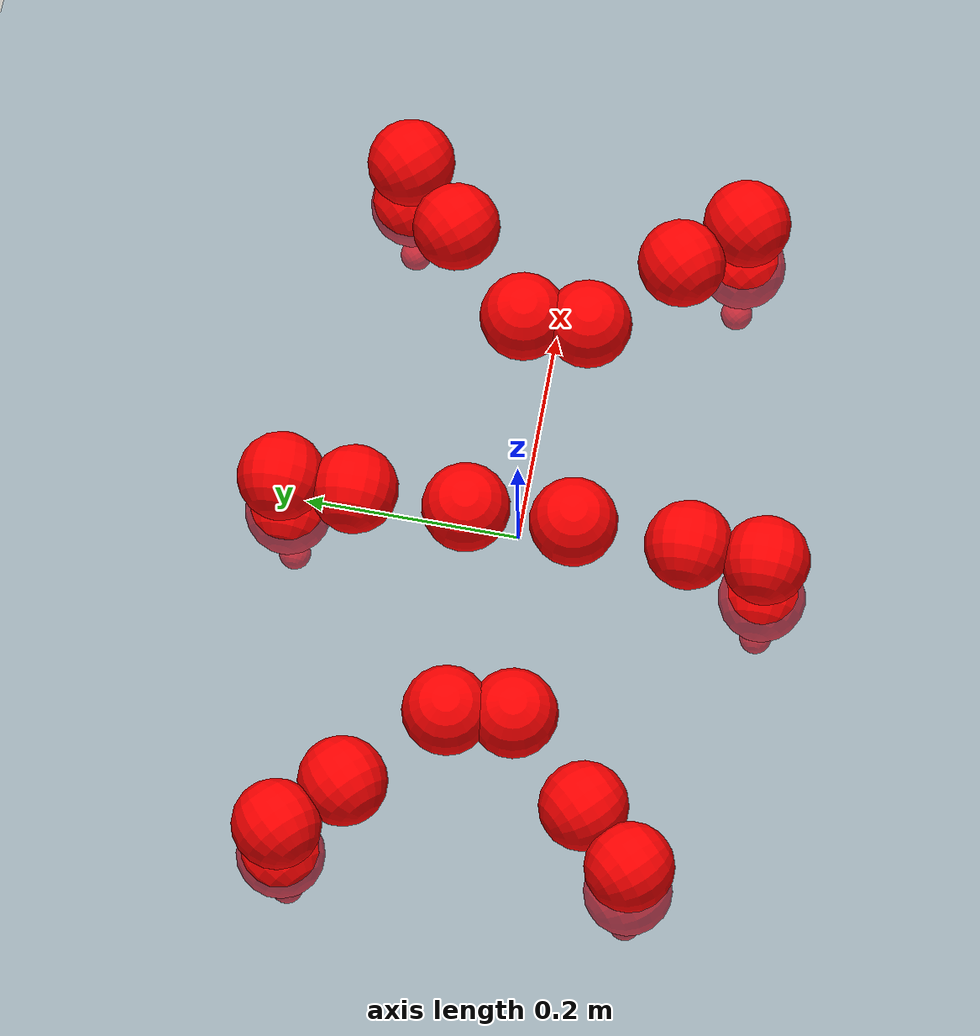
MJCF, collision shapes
<mujoco model="Golem">
  <compiler angle="radian" assetdir="assets" balanceinertia="true" inertiafromgeom="false"/>

  <option timestep="0.005" density="1.2" viscosity="2e-05"/>

  <size nkey="1"/>

  <visual>
    <quality shadowsize="8192"/>
    <map shadowclip="0.5"/>
  </visual>

  <default>
    <default class="/">
      <joint armature="0.01" damping="0.01" frictionloss="0.01"/>
      <geom contype="0" conaffinity="0" group="1" solref="-1000 -80"/>
      <site size="0.01 0.005 0.005" group="5"/>
      <general forcelimited="true" biastype="affine" gainprm="25" biasprm="0 -25 -0.5"/>
      <default class="visual">
        <geom type="mesh" group="2"/>
      </default>
      <default class="collision">
        <geom group="3"/>
      </default>
      <default class="foot">
        <geom size="0.01 0 0" condim="6" group="4" priority="1" solimp="0.015 1 0.01"/>
      </default>
      <default class="reward_collision_sphere">
        <geom group="5" rgba="1 0 0 1"/>
      </default>
    </default>
  </default>

  <asset>
    <texture type="skybox" colorspace="auto" name="//unnamed_texture_0" builtin="gradient" rgb1="0.95 0.95 0.95" rgb2="0.95 0.95 0.95" width="100" height="600"/>
    <texture type="2d" colorspace="auto" name="texplane" builtin="checker" rgb1="0.345 0.575 0.748" rgb2="0.345 0.575 0.748" markrgb="1 1 1" width="512" height="512"/>
    <material name="MatPlane" class="/" texture="texplane" texuniform="true" texrepeat="2 2" specular="0.9"/>
    <mesh name="body" class="/" file="body.stl" scale="0.001 0.001 0.001"/>
    <mesh name="coxa" class="/" file="coxa.stl" scale="0.001 0.001 0.001"/>
    <mesh name="femur" class="/" file="femur.stl" scale="0.001 0.001 0.001"/>
    <mesh name="tibia" class="/" file="tibia.stl" scale="0.001 0.001 0.001"/>
    <mesh name="tarsus" class="/" file="tarsus.stl" scale="0.001 0.001 0.001"/>
  </asset>

  <worldbody>
    <geom name="floor" class="/" size="100 100 0.125" type="plane" group="0" material="MatPlane"/>
    <light name="toplight_shadow" class="/" pos="0 0 5" dir="0.0990148 0.0990148 -0.990148" type="directional" ambient="0.04 0.04 0.04" diffuse="0.55 0.55 0.55" specular="0.12 0.12 0.12"/>
    <light name="toplight_fill" class="/" pos="0 0 5" dir="0.0990148 0.0990148 -0.990148" type="directional" castshadow="false" ambient="0.04 0.04 0.04" diffuse="0.3 0.3 0.3" specular="0.08 0.08 0.08"/>
    <body name="trunk" pos="-0.00227692 0.000449674 0.00267397" quat="1 0.000303924 -1.79823e-05 0.000320548">
      <inertial pos="0.00233312 0.00012395 -0.00292702" quat="0.999996 -0.00272422 -0.00016899 -0.000294692" mass="3.99898" diaginertia="0.0277618 0.00118277 0.0262263"/>
      <joint name="//unnamed_joint_0" type="free"/>
      <geom name="//unnamed_geom_1" class="/" pos="0 0 0.0770454" quat="1 0 0 0" type="mesh" rgba="0.9 0.9 0.9 1" mesh="body"/>
      <site name="imu" class="/" pos="0.160827 -0.00471093 0.13332" size="0.010233"/>
      <camera name="track" class="/" pos="0 -1.30171 0" quat="0.707107 0.707107 0 0" mode="trackcom"/>
      <camera name="ego_camera" class="/" pos="0.157975 0 0.120383" quat="-0.5 -0.5 0.5 0.5"/>
      <body name="coxa_RR" pos="-0.211995 -0.0561144 0.0778597" quat="0.382609 0.00057231 -0.000163841 -0.92391">
        <inertial pos="0.00105367 0.00243532 0.00135996" quat="0.999937 -0.000721359 -0.00879154 -0.00695671" mass="0.2233" diaginertia="0.0274979 0.00120653 0.0273833"/>
        <joint name="coxa_joint_RR" class="/" pos="0 0 0" axis="-0.00365619 0.0204331 -0.999785" stiffness="0.000405324" range="-3.14434 3.11968" armature="0.00932745" damping="0.00873527" frictionloss="0.0109391"/>
        <geom name="//unnamed_geom_2" class="/" type="mesh" rgba="0.2 0.2 0.2 1" mesh="coxa"/>
        <geom name="//unnamed_geom_3" class="reward_collision_sphere" size="0.0409318" pos="-0.0364558 0 0"/>
        <body name="femur_RR" pos="0.0685398 0.00385556 -0.00668313" quat="0.499671 -0.50108 0.49927 0.499978">
          <inertial pos="-0.00271387 0.00150562 -0.00191645" quat="0.999991 -0.000517094 -0.00105282 -0.00413439" mass="0.214573" diaginertia="0.0262923 0.00114433 0.0249431"/>
          <joint name="femur_joint_RR" class="/" pos="0 0 0" axis="0.00225437 0.000378483 -0.999997" range="-3.08896 3.17264" armature="0.00978375" damping="0.0276461" frictionloss="0.0105757"/>
          <geom name="//unnamed_geom_4" class="/" type="mesh" rgba="0.9 0.9 0.9 1" mesh="femur"/>
          <geom name="//unnamed_geom_5" class="reward_collision_sphere" size="0.0409318"/>
          <body name="tibia_RR" pos="-0.00265755 -0.0696257 0.00100025" quat="-0.000290672 1 -0.000390749 -0.000752891">
            <inertial pos="0.000973625 -0.00109196 -8.28496e-06" quat="0.999999 0.000840645 0.00100208 0.000250902" mass="0.214528" diaginertia="0.0258004 0.00112826 0.0241704"/>
            <joint name="tibia_joint_RR" class="/" pos="0 0 0" axis="0.00485885 0.00838453 0.999953" stiffness="0.00694464" range="-3.09401 3.08719" armature="0.0100419" damping="0.00644747" frictionloss="0.0107447"/>
            <geom name="//unnamed_geom_6" class="/" type="mesh" rgba="0.2 0.2 0.2 1" mesh="tibia"/>
            <geom name="//unnamed_geom_7" class="reward_collision_sphere" size="0.0409318"/>
            <body name="tarsus_RR" pos="0.108189 -0.00272214 -0.00310335" quat="0.999999 0.000106026 -0.000260697 0.00116663">
              <inertial pos="0.0764785 -0.00132085 -0.000444909" quat="0.508435 0.490331 0.499433 0.501632" mass="0.217093" diaginertia="0.0273958 0.00122659 0.0259022"/>
              <joint name="tarsus_joint_RR" class="/" pos="0 0 0" axis="-0.00231112 -0.0021614 0.999995" stiffness="0.0184756" range="-3.10588 3.14742" armature="0.0104596" damping="0.0187604" frictionloss="0.010216"/>
              <geom name="//unnamed_geom_8" class="/" type="mesh" rgba="0.9 0.9 0.9 1" mesh="tarsus"/>
              <geom name="foot_1" class="foot" size="0.00976352" pos="0.136102 0 0" quat="0 -0.707107 0 0.707107"/>
              <geom name="//unnamed_geom_10" class="reward_collision_sphere" size="0.0409318"/>
              <geom name="//unnamed_geom_11" class="reward_collision_sphere" size="0.0153494" pos="0.130633 0 0"/>
              <site name="foot_1" class="foot" pos="0.136102 0 0" quat="0 -0.707107 0 0.707107" size="0.010233"/>
            </body>
          </body>
        </body>
      </body>
      <body name="coxa_RM" pos="0.000669264 -0.0880711 0.0801527" quat="0.706436 3.74602e-05 -0.00123353 -0.707776">
        <inertial pos="0.00107235 -8.84851e-05 -0.00200297" quat="0.999968 0.00770046 -0.00188455 0.000543194" mass="0.209767" diaginertia="0.027024 0.00115323 0.0238685"/>
        <joint name="coxa_joint_RM" class="/" pos="0 0 0" axis="-0.00157767 -0.00486776 -0.999987" range="-3.07429 3.15416" armature="0.00875275" damping="0.0209845" frictionloss="0.010456"/>
        <geom name="//unnamed_geom_12" class="/" type="mesh" rgba="0.2 0.2 0.2 1" mesh="coxa"/>
        <geom name="//unnamed_geom_13" class="reward_collision_sphere" size="0.0409318" pos="-0.0364558 0 0"/>
        <body name="femur_RM" pos="0.0705985 -0.00303712 0.00100808" quat="0.500527 -0.49995 0.499887 0.499636">
          <inertial pos="0.00203676 -0.00274252 0.00229724" quat="0.999984 0.00220822 -0.00486381 0.00168294" mass="0.214365" diaginertia="0.0263015 0.00116442 0.0250121"/>
          <joint name="femur_joint_RM" class="/" pos="0 0 0" axis="-9.49233e-05 -0.000138775 -1" stiffness="0.0128418" range="-3.12622 3.1544" armature="0.0110322" damping="0.00878233" frictionloss="0.00893765"/>
          <geom name="//unnamed_geom_14" class="/" type="mesh" rgba="0.9 0.9 0.9 1" mesh="femur"/>
          <geom name="//unnamed_geom_15" class="reward_collision_sphere" size="0.0409318"/>
          <body name="tibia_RM" pos="1.74301e-05 -0.0711141 -0.00178644" quat="-0.000764514 0.999999 0.00049526 0.000413504">
            <inertial pos="-0.00320933 -0.00384634 5.64427e-05" quat="0.99993 -0.00731949 -4.06954e-05 0.00933547" mass="0.206468" diaginertia="0.0255265 0.00113109 0.0250333"/>
            <joint name="tibia_joint_RM" class="/" pos="0 0 0" axis="0.000109267 -0.00788469 0.999969" range="-3.12423 3.21991" armature="0.0112376" damping="0.0175803" frictionloss="0.010327"/>
            <geom name="//unnamed_geom_16" class="/" type="mesh" rgba="0.2 0.2 0.2 1" mesh="tibia"/>
            <geom name="//unnamed_geom_17" class="reward_collision_sphere" size="0.0409318"/>
            <body name="tarsus_RM" pos="0.109032 0.0018512 0.0023537" quat="1 -0.000153892 0.00011705 -0.000144782">
              <inertial pos="0.075444 -0.00273508 0.00302145" quat="0.502066 0.496964 0.499677 0.501279" mass="0.221472" diaginertia="0.0265889 0.00119296 0.0244272"/>
              <joint name="tarsus_joint_RM" class="/" pos="0 0 0" axis="0.00220877 0.0091559 0.999956" range="-3.12442 3.09552" armature="0.0111179" damping="0.0176684" frictionloss="0.0104487"/>
              <geom name="//unnamed_geom_18" class="/" type="mesh" rgba="0.9 0.9 0.9 1" mesh="tarsus"/>
              <geom name="foot_2" class="foot" size="0.0112244" pos="0.136102 0 0" quat="0 -0.707107 0 0.707107"/>
              <geom name="//unnamed_geom_20" class="reward_collision_sphere" size="0.0409318"/>
              <geom name="//unnamed_geom_21" class="reward_collision_sphere" size="0.0153494" pos="0.130633 0 0"/>
              <site name="foot_2" class="foot" pos="0.136102 0 0" quat="0 -0.707107 0 0.707107" size="0.010233"/>
            </body>
          </body>
        </body>
      </body>
      <body name="coxa_RF" pos="0.217653 -0.0568177 0.0800993" quat="0.923887 0.000513921 -2.47208e-05 -0.382666">
        <inertial pos="0.00144198 0.00254654 -0.00036878" quat="0.999964 0.0033747 -0.00558808 0.00535359" mass="0.210308" diaginertia="0.024804 0.00116637 0.0237232"/>
        <joint name="coxa_joint_RF" class="/" pos="0 0 0" axis="0.00489464 -0.00172516 -0.999987" range="-3.16971 3.14018" armature="0.0103118" damping="0.0141803" frictionloss="0.010908"/>
        <geom name="//unnamed_geom_22" class="/" type="mesh" rgba="0.2 0.2 0.2 1" mesh="coxa"/>
        <geom name="//unnamed_geom_23" class="reward_collision_sphere" size="0.0409318" pos="-0.0364558 0 0"/>
        <body name="femur_RF" pos="0.0696964 0.00027517 -0.00134648" quat="0.500237 -0.50011 0.499515 0.500138">
          <inertial pos="-0.00174961 -0.00245043 0.00136533" quat="0.999974 0.00670944 -0.00199036 0.00173832" mass="0.225948" diaginertia="0.0269009 0.00117972 0.025873"/>
          <joint name="femur_joint_RF" class="/" pos="0 0 0" axis="0.00115437 -0.00142692 -0.999998" stiffness="0.016989" range="-3.08851 3.18124" armature="0.0120495" damping="0.00545672" frictionloss="0.0119012"/>
          <geom name="//unnamed_geom_24" class="/" type="mesh" rgba="0.9 0.9 0.9 1" mesh="femur"/>
          <geom name="//unnamed_geom_25" class="reward_collision_sphere" size="0.0409318"/>
          <body name="tibia_RF" pos="-9.85515e-05 -0.0725659 -0.00276694" quat="0.00027734 1 8.57182e-05 0.000173274">
            <inertial pos="0.00193367 -0.00209327 -0.000230979" quat="1 -0.000821222 0.000374498 -1.36052e-06" mass="0.213609" diaginertia="0.0261244 0.00115313 0.0248706"/>
            <joint name="tibia_joint_RF" class="/" pos="0 0 0" axis="0.00792314 0.00480235 0.999957" range="-3.11459 3.14348" armature="0.010279" damping="0.0094184" frictionloss="0.0110461"/>
            <geom name="//unnamed_geom_26" class="/" type="mesh" rgba="0.2 0.2 0.2 1" mesh="tibia"/>
            <geom name="//unnamed_geom_27" class="reward_collision_sphere" size="0.0409318"/>
            <body name="tarsus_RF" pos="0.106342 -0.000554858 0.00153228" quat="1 2.25109e-05 0.000278678 8.60804e-05">
              <inertial pos="0.074248 -0.0016361 0.000345205" quat="0.515839 0.495112 0.497968 0.490715" mass="0.214808" diaginertia="0.0257164 0.00114773 0.0254882"/>
              <joint name="tarsus_joint_RF" class="/" pos="0 0 0" axis="-0.00311871 0.00868516 0.999957" range="-3.18904 3.13145" armature="0.0115311" damping="0" frictionloss="0.0106931"/>
              <geom name="//unnamed_geom_28" class="/" type="mesh" rgba="0.9 0.9 0.9 1" mesh="tarsus"/>
              <geom name="foot_3" class="foot" size="0.0103225" pos="0.136102 0 0" quat="0 -0.707107 0 0.707107"/>
              <geom name="//unnamed_geom_30" class="reward_collision_sphere" size="0.0409318"/>
              <geom name="//unnamed_geom_31" class="reward_collision_sphere" size="0.0153494" pos="0.130633 0 0"/>
              <site name="foot_3" class="foot" pos="0.136102 0 0" quat="0 -0.707107 0 0.707107" size="0.010233"/>
            </body>
          </body>
        </body>
      </body>
      <body name="coxa_LR" pos="-0.220358 0.0548946 0.0790429" quat="0.382525 -0.000728613 -0.00100966 0.923944">
        <inertial pos="0.00283959 -0.0011268 0.000172442" quat="0.999926 0.0064645 -0.00536112 0.00884331" mass="0.208109" diaginertia="0.0268623 0.00116658 0.0253131"/>
        <joint name="coxa_joint_LR" class="/" pos="0 0 0" axis="-0.0153269 0.0046729 -0.999872" stiffness="0.00330524" range="-3.12445 3.18262" armature="0.0101366" damping="0.0115592" frictionloss="0.0115646"/>
        <geom name="//unnamed_geom_32" class="/" type="mesh" rgba="0.2 0.2 0.2 1" mesh="coxa"/>
        <geom name="//unnamed_geom_33" class="reward_collision_sphere" size="0.0409318" pos="-0.0364558 0 0"/>
        <body name="femur_LR" pos="0.0771127 0.00113168 2.52879e-05" quat="0.499984 -0.500051 0.499836 0.500128">
          <inertial pos="0.00088906 0.00217162 -0.00212749" quat="0.999999 -0.000982708 0.000112079 -0.000320003" mass="0.213923" diaginertia="0.02781 0.00117542 0.0250449"/>
          <joint name="femur_joint_LR" class="/" pos="0 0 0" axis="0.0135494 0.00263621 0.999905" range="-3.15311 3.13554" armature="0.00807346" damping="0.00576925" frictionloss="0.0106092"/>
          <geom name="//unnamed_geom_34" class="/" type="mesh" rgba="0.9 0.9 0.9 1" mesh="femur"/>
          <geom name="//unnamed_geom_35" class="reward_collision_sphere" size="0.0409318"/>
          <body name="tibia_LR" pos="-0.00129737 -0.0708327 -0.000450829" quat="2.17995e-05 1 -0.000186784 -0.000292507">
            <inertial pos="0.00023012 0.00219211 -0.000565641" quat="0.999951 -0.00202842 -0.00280743 -0.00928924" mass="0.212451" diaginertia="0.0258309 0.00118544 0.0259439"/>
            <joint name="tibia_joint_LR" class="/" pos="0 0 0" axis="0.00825068 -0.00300025 -0.999961" stiffness="0.0111598" range="-3.15376 3.16815" armature="0.0105783" damping="0.0260476" frictionloss="0.0106096"/>
            <geom name="//unnamed_geom_36" class="/" type="mesh" rgba="0.2 0.2 0.2 1" mesh="tibia"/>
            <geom name="//unnamed_geom_37" class="reward_collision_sphere" size="0.0409318"/>
            <body name="tarsus_LR" pos="0.102977 0.00201129 -0.00110949" quat="1 -6.22521e-05 0.000180121 0.00042947">
              <inertial pos="0.0695473 0.00277647 -3.1454e-05" quat="0.499965 0.499986 0.499866 0.500182" mass="0.209206" diaginertia="0.0260825 0.00117866 0.0258278"/>
              <joint name="tarsus_joint_LR" class="/" pos="0 0 0" axis="-0.000722354 -0.0101677 -0.999948" range="-3.14165 3.11829" armature="0.0106205" damping="0.0359793" frictionloss="0.0102833"/>
              <geom name="//unnamed_geom_38" class="/" type="mesh" rgba="0.9 0.9 0.9 1" mesh="tarsus"/>
              <geom name="foot_4" class="foot" size="0.0100338" pos="0.136102 0 0" quat="0.707107 0 -0.707107 0"/>
              <geom name="//unnamed_geom_40" class="reward_collision_sphere" size="0.0409318"/>
              <geom name="//unnamed_geom_41" class="reward_collision_sphere" size="0.0153494" pos="0.130633 0 0"/>
              <site name="foot_4" class="foot" pos="0.136102 0 0" quat="0.707107 0 -0.707107 0" size="0.010233"/>
            </body>
          </body>
        </body>
      </body>
      <body name="coxa_LM" pos="-0.00284021 0.0837691 0.0791909" quat="0.707043 -6.06818e-05 -0.000279104 0.707171">
        <inertial pos="0.00146601 0.00274993 0.00295133" quat="0.999953 0.00739756 0.00608113 0.00118787" mass="0.214883" diaginertia="0.0261571 0.001127 0.0259392"/>
        <joint name="coxa_joint_LM" class="/" pos="0 0 0" axis="-0.000517428 -0.00859793 -0.999963" range="-3.09255 3.07517" armature="0.0102713" damping="0.0119206" frictionloss="0.0106854"/>
        <geom name="//unnamed_geom_42" class="/" type="mesh" rgba="0.2 0.2 0.2 1" mesh="coxa"/>
        <geom name="//unnamed_geom_43" class="reward_collision_sphere" size="0.0409318" pos="-0.0364558 0 0"/>
        <body name="femur_LM" pos="0.0668428 0.00154127 0.000978871" quat="0.4999 -0.499643 0.500316 0.50014">
          <inertial pos="0.000321222 -0.0021911 -0.000787224" quat="0.999994 0.000447096 -0.0034102 0.000578013" mass="0.207742" diaginertia="0.0256274 0.00117103 0.0251689"/>
          <joint name="femur_joint_LM" class="/" pos="0 0 0" axis="0.000111331 0.000468504 1" range="-3.10064 3.17598" armature="0.0114625" damping="0.0104432" frictionloss="0.0106113"/>
          <geom name="//unnamed_geom_44" class="/" type="mesh" rgba="0.9 0.9 0.9 1" mesh="femur"/>
          <geom name="//unnamed_geom_45" class="reward_collision_sphere" size="0.0409318"/>
          <body name="tibia_LM" pos="-0.000148321 -0.0678571 -0.000394399" quat="-0.000479888 0.999999 -0.00022593 0.00133479">
            <inertial pos="0.000869084 0.00180904 -0.000429643" quat="0.999918 -0.00924055 0.00879336 -0.00123184" mass="0.224977" diaginertia="0.0272784 0.00123692 0.0262324"/>
            <joint name="tibia_joint_LM" class="/" pos="0 0 0" axis="-0.000485029 0.00445504 -0.99999" stiffness="0.0197327" range="-3.13774 3.12973" armature="0.0110667" damping="0.0211673" frictionloss="0.0104785"/>
            <geom name="//unnamed_geom_46" class="/" type="mesh" rgba="0.2 0.2 0.2 1" mesh="tibia"/>
            <geom name="//unnamed_geom_47" class="reward_collision_sphere" size="0.0409318"/>
            <body name="tarsus_LM" pos="0.104709 -0.00173592 0.00128834" quat="1 -0.000299038 1.79522e-05 5.22442e-05">
              <inertial pos="0.0724963 0.0005858 -0.000351023" quat="0.492127 0.498679 0.503901 0.505187" mass="0.208123" diaginertia="0.0274708 0.00116196 0.0255453"/>
              <joint name="tarsus_joint_LM" class="/" pos="0 0 0" axis="0.00825913 0.00161801 -0.999965" range="-3.19491 3.1355" armature="0.00958426" damping="0.0133211" frictionloss="0.0100654"/>
              <geom name="//unnamed_geom_48" class="/" type="mesh" rgba="0.9 0.9 0.9 1" mesh="tarsus"/>
              <geom name="foot_5" class="foot" size="0.0116644" pos="0.136102 0 0" quat="0.707107 0 -0.707107 0"/>
              <geom name="//unnamed_geom_50" class="reward_collision_sphere" size="0.0409318"/>
              <geom name="//unnamed_geom_51" class="reward_collision_sphere" size="0.0153494" pos="0.130633 0 0"/>
              <site name="foot_5" class="foot" pos="0.136102 0 0" quat="0.707107 0 -0.707107 0" size="0.010233"/>
            </body>
          </body>
        </body>
      </body>
      <body name="coxa_LF" pos="0.214017 0.0545073 0.0806116" quat="0.923634 0.000647311 0.000601248 0.383275">
        <inertial pos="0.000795745 -0.000419824 -0.000108714" quat="0.999915 0.00306095 -0.00917154 0.00878797" mass="0.206163" diaginertia="0.0260714 0.00119122 0.0244981"/>
        <joint name="coxa_joint_LF" class="/" pos="0 0 0" axis="-0.00173142 0.00204041 -0.999996" range="-3.09365 3.16786" armature="0.0108896" damping="0.0309712" frictionloss="0.010504"/>
        <geom name="//unnamed_geom_52" class="/" type="mesh" rgba="0.2 0.2 0.2 1" mesh="coxa"/>
        <geom name="//unnamed_geom_53" class="reward_collision_sphere" size="0.0409318" pos="-0.0364558 0 0"/>
        <body name="femur_LF" pos="0.0713025 0.00128321 0.00255399" quat="0.501053 -0.499786 0.499561 0.499599">
          <inertial pos="-0.00062536 -1.70882e-05 -0.00192973" quat="0.999993 0.00238939 0.00144738 0.00250628" mass="0.202172" diaginertia="0.026373 0.00112448 0.0251331"/>
          <joint name="femur_joint_LF" class="/" pos="0 0 0" axis="-0.00096066 -0.00122613 0.999999" range="-3.10842 3.13303" armature="0.010582" damping="0" frictionloss="0.00960449"/>
          <geom name="//unnamed_geom_54" class="/" type="mesh" rgba="0.9 0.9 0.9 1" mesh="femur"/>
          <geom name="//unnamed_geom_55" class="reward_collision_sphere" size="0.0409318"/>
          <body name="tibia_LF" pos="-0.00295251 -0.0754395 -0.00091334" quat="-0.000308943 0.999999 0.00121051 0.000337377">
            <inertial pos="0.00224293 -0.0034145 0.000652164" quat="0.999933 -0.00557323 0.00751249 -0.0067604" mass="0.206056" diaginertia="0.0271248 0.00115858 0.0252051"/>
            <joint name="tibia_joint_LF" class="/" pos="0 0 0" axis="-0.00135177 0.000337915 -0.999999" stiffness="0.00491519" range="-3.21638 3.18368" armature="0.00943527" damping="0" frictionloss="0.0103194"/>
            <geom name="//unnamed_geom_56" class="/" type="mesh" rgba="0.2 0.2 0.2 1" mesh="tibia"/>
            <geom name="//unnamed_geom_57" class="reward_collision_sphere" size="0.0409318"/>
            <body name="tarsus_LF" pos="0.103522 -0.000148561 0.000369869" quat="0.999999 0.000338662 0.000829714 -0.000476419">
              <inertial pos="0.0757763 -0.0017821 -0.00107698" quat="0.498697 0.49965 0.501667 0.499982" mass="0.209149" diaginertia="0.0257626 0.00114204 0.0243454"/>
              <joint name="tarsus_joint_LF" class="/" pos="0 0 0" axis="-0.0029933 0.00431291 -0.999986" stiffness="0.00942759" range="-3.12561 3.14893" armature="0.00946428" damping="0.029662" frictionloss="0.00845543"/>
              <geom name="//unnamed_geom_58" class="/" type="mesh" rgba="0.9 0.9 0.9 1" mesh="tarsus"/>
              <geom name="foot_6" class="foot" size="0.0114098" pos="0.136102 0 0" quat="0.707107 0 -0.707107 0"/>
              <geom name="//unnamed_geom_60" class="reward_collision_sphere" size="0.0409318"/>
              <geom name="//unnamed_geom_61" class="reward_collision_sphere" size="0.0153494" pos="0.130633 0 0"/>
              <site name="foot_6" class="foot" pos="0.136102 0 0" quat="0.707107 0 -0.707107 0" size="0.010233"/>
            </body>
          </body>
        </body>
      </body>
    </body>
  </worldbody>

  <contact>
    <pair class="/" geom1="floor" geom2="foot_1" name="//unnamed_contact_0"/>
    <pair class="/" geom1="floor" geom2="foot_2" name="//unnamed_contact_1"/>
    <pair class="/" geom1="floor" geom2="foot_3" name="//unnamed_contact_2"/>
    <pair class="/" geom1="floor" geom2="foot_4" name="//unnamed_contact_3"/>
    <pair class="/" geom1="floor" geom2="foot_5" name="//unnamed_contact_4"/>
    <pair class="/" geom1="floor" geom2="foot_6" name="//unnamed_contact_5"/>
  </contact>

  <actuator>
    <general name="coxa_joint_RR" class="/" joint="coxa_joint_RR" forcerange="-7.82733 7.82733" gainprm="25.3024" biasprm="0 -25.3024 -0.534053"/>
    <general name="femur_joint_RR" class="/" joint="femur_joint_RR" forcerange="-7.56427 7.56427" gainprm="25.3024" biasprm="0 -25.3024 -0.534053"/>
    <general name="tibia_joint_RR" class="/" joint="tibia_joint_RR" forcerange="-7.45701 7.45701" gainprm="25.3024" biasprm="0 -25.3024 -0.534053"/>
    <general name="tarsus_joint_RR" class="/" joint="tarsus_joint_RR" forcerange="-7.61556 7.61556" gainprm="25.3024" biasprm="0 -25.3024 -0.534053"/>
    <general name="coxa_joint_RM" class="/" joint="coxa_joint_RM" forcerange="-8.01144 8.01144" gainprm="25.3024" biasprm="0 -25.3024 -0.534053"/>
    <general name="femur_joint_RM" class="/" joint="femur_joint_RM" forcerange="-8.06749 8.06749" gainprm="25.3024" biasprm="0 -25.3024 -0.534053"/>
    <general name="tibia_joint_RM" class="/" joint="tibia_joint_RM" forcerange="-7.71693 7.71693" gainprm="25.3024" biasprm="0 -25.3024 -0.534053"/>
    <general name="tarsus_joint_RM" class="/" joint="tarsus_joint_RM" forcerange="-7.45592 7.45592" gainprm="25.3024" biasprm="0 -25.3024 -0.534053"/>
    <general name="coxa_joint_RF" class="/" joint="coxa_joint_RF" forcerange="-7.74045 7.74045" gainprm="25.3024" biasprm="0 -25.3024 -0.534053"/>
    <general name="femur_joint_RF" class="/" joint="femur_joint_RF" forcerange="-6.43079 6.43079" gainprm="25.3024" biasprm="0 -25.3024 -0.534053"/>
    <general name="tibia_joint_RF" class="/" joint="tibia_joint_RF" forcerange="-6.85362 6.85362" gainprm="25.3024" biasprm="0 -25.3024 -0.534053"/>
    <general name="tarsus_joint_RF" class="/" joint="tarsus_joint_RF" forcerange="-7.03955 7.03955" gainprm="25.3024" biasprm="0 -25.3024 -0.534053"/>
    <general name="coxa_joint_LR" class="/" joint="coxa_joint_LR" forcerange="-7.49768 7.49768" gainprm="25.3024" biasprm="0 -25.3024 -0.534053"/>
    <general name="femur_joint_LR" class="/" joint="femur_joint_LR" forcerange="-7.23862 7.23862" gainprm="25.3024" biasprm="0 -25.3024 -0.534053"/>
    <general name="tibia_joint_LR" class="/" joint="tibia_joint_LR" forcerange="-6.53363 6.53363" gainprm="25.3024" biasprm="0 -25.3024 -0.534053"/>
    <general name="tarsus_joint_LR" class="/" joint="tarsus_joint_LR" forcerange="-6.85317 6.85317" gainprm="25.3024" biasprm="0 -25.3024 -0.534053"/>
    <general name="coxa_joint_LM" class="/" joint="coxa_joint_LM" forcerange="-7.51423 7.51423" gainprm="25.3024" biasprm="0 -25.3024 -0.534053"/>
    <general name="femur_joint_LM" class="/" joint="femur_joint_LM" forcerange="-7.12321 7.12321" gainprm="25.3024" biasprm="0 -25.3024 -0.534053"/>
    <general name="tibia_joint_LM" class="/" joint="tibia_joint_LM" forcerange="-7.48485 7.48485" gainprm="25.3024" biasprm="0 -25.3024 -0.534053"/>
    <general name="tarsus_joint_LM" class="/" joint="tarsus_joint_LM" forcerange="-6.76259 6.76259" gainprm="25.3024" biasprm="0 -25.3024 -0.534053"/>
    <general name="coxa_joint_LF" class="/" joint="coxa_joint_LF" forcerange="-7.58038 7.58038" gainprm="25.3024" biasprm="0 -25.3024 -0.534053"/>
    <general name="femur_joint_LF" class="/" joint="femur_joint_LF" forcerange="-7.10681 7.10681" gainprm="25.3024" biasprm="0 -25.3024 -0.534053"/>
    <general name="tibia_joint_LF" class="/" joint="tibia_joint_LF" forcerange="-7.27389 7.27389" gainprm="25.3024" biasprm="0 -25.3024 -0.534053"/>
    <general name="tarsus_joint_LF" class="/" joint="tarsus_joint_LF" forcerange="-7.77255 7.77255" gainprm="25.3024" biasprm="0 -25.3024 -0.534053"/>
  </actuator>

  <sensor>
    <gyro site="imu" name="imu_angular_velocity"/>
    <velocimeter site="imu" name="imu_linear_velocity"/>
    <framelinvel objtype="site" objname="foot_1" name="foot_1_global_linear_velocity"/>
    <framelinvel objtype="site" objname="foot_2" name="foot_2_global_linear_velocity"/>
    <framelinvel objtype="site" objname="foot_3" name="foot_3_global_linear_velocity"/>
    <framelinvel objtype="site" objname="foot_4" name="foot_4_global_linear_velocity"/>
    <framelinvel objtype="site" objname="foot_5" name="foot_5_global_linear_velocity"/>
    <framelinvel objtype="site" objname="foot_6" name="foot_6_global_linear_velocity"/>
  </sensor>

  <keyframe>
    <key name="home" qpos="0 0 0.1457 1 0 0 0 0 0 0 0 0 0 0 0 0 0 0 0 0 0 0 0 0 0 0 0 0 0 0 0"/>
  </keyframe>
</mujoco>
